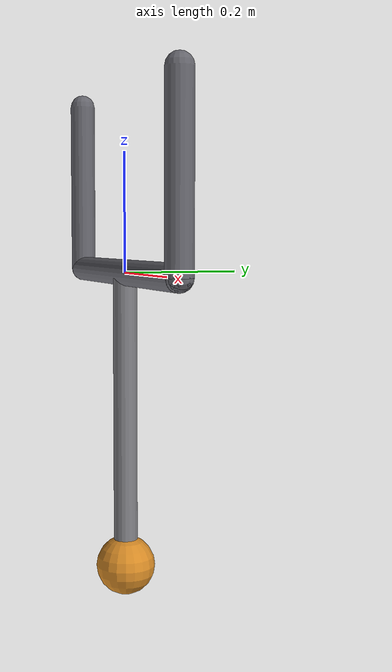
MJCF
<mujoco model="actuator_force">
    <compiler angle="radian"/>
    <option gravity="0 0 -9.81" timestep="0.001" integrator="RK4"/>

    <default>
        <geom contype="0" conaffinity="0"/>
    </default>

    <worldbody>
        <!-- Support frame -->
        <geom name="beam" type="capsule" size="0.022"
              fromto="-0.25 0 0  0.25 0 0" rgba="0.40 0.40 0.43 1"/>
        <geom name="post_l" type="capsule" size="0.022"
              fromto="-0.25 0 0  -0.25 0 0.30" rgba="0.40 0.40 0.43 1"/>
        <geom name="post_r" type="capsule" size="0.022"
              fromto="0.25 0 0  0.25 0 0.30" rgba="0.40 0.40 0.43 1"/>

        <body name="arm" pos="0 0 0">
            <joint name="hinge" type="hinge" axis="1 0 0" damping="0.1"/>
            <inertial pos="0 0 -0.25" mass="1.0" diaginertia="0.01 0.01 0.01"/>
            <geom name="rod" type="capsule" size="0.02"
                  fromto="0 0 0  0 0 -0.5" rgba="0.48 0.48 0.50 1"/>
            <geom name="tip" type="sphere" size="0.05"
                  pos="0 0 -0.5" rgba="0.85 0.55 0.15 1"/>
        </body>
    </worldbody>

    <actuator>
        <motor name="motor" joint="hinge" gear="1"/>
    </actuator>

    <sensor>
        <actuatorfrc name="afrc" actuator="motor"/>
        <jointactuatorfrc name="jfrc" joint="hinge"/>
    </sensor>
</mujoco>
